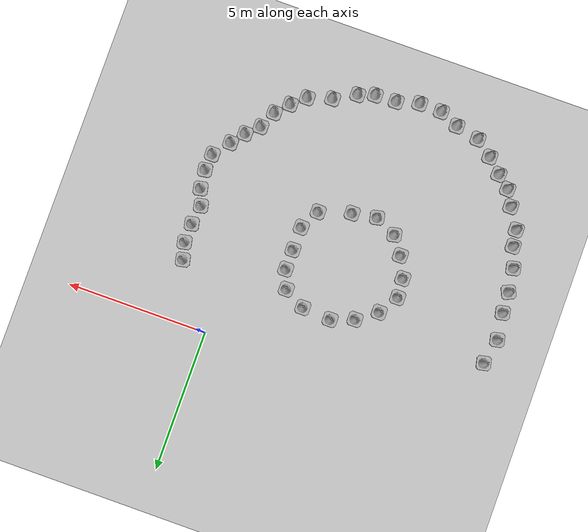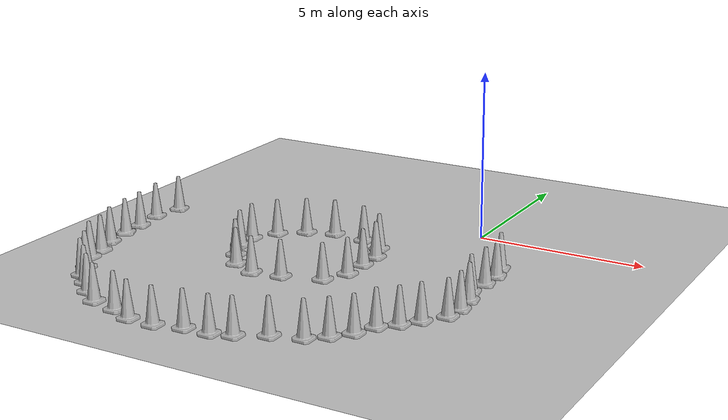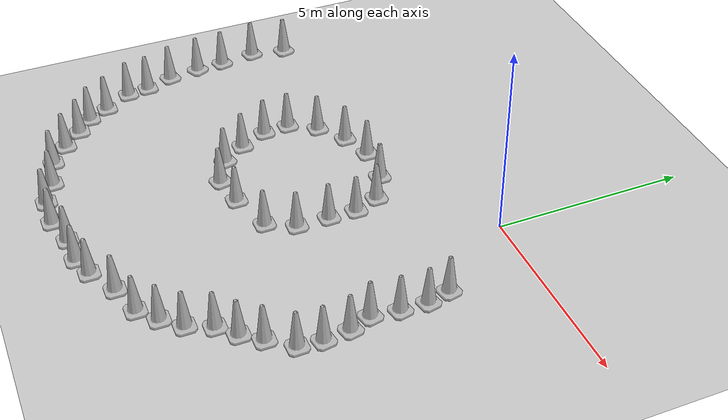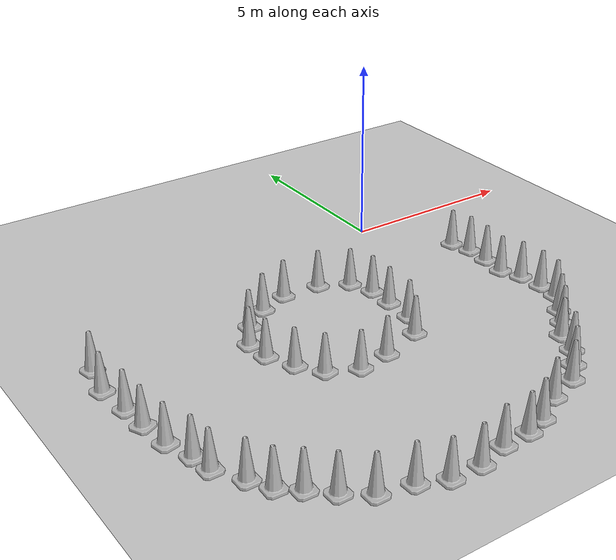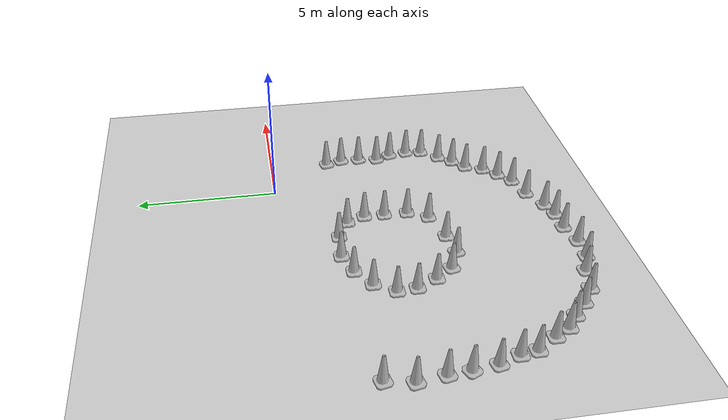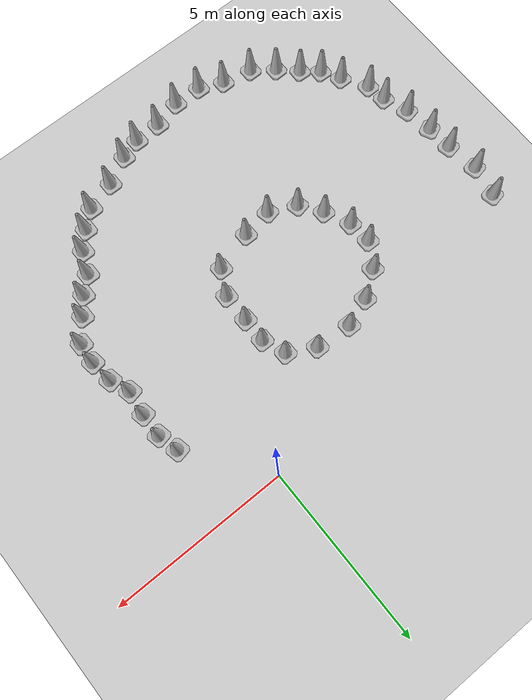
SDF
<sdf version="1.7">
 <world name="empty">
  <model name="ground_plane">
   <static>1</static>
   <link name="link">
    <collision name="collision">
     <geometry><plane><normal>0 0 1</normal><size>100 100</size></plane></geometry>
     <surface>
      <contact><collide_bitmask>65535</collide_bitmask></contact>
      <friction><ode><mu>100</mu><mu2>50</mu2></ode></friction>
     </surface>
    </collision>
    <visual name="visual">
     <cast_shadows>0</cast_shadows>
     <geometry><plane><normal>0 0 1</normal><size>100 100</size></plane></geometry>
     <material>
      <script><uri>file://media/materials/scripts/gazebo.material</uri><name>Gazebo/Grey</name></script>
     </material>
    </visual>
   </link>
  </model>
  <model name="Construction Cone_clone_16">
   <link name="link">
    <collision name="collision">
     <geometry>
      <mesh><scale>10 10 10</scale><uri>model://construction_cone/meshes/construction_cone.dae</uri></mesh>
     </geometry>
    </collision>
    <visual name="visual">
     <geometry>
      <mesh><scale>10 10 10</scale><uri>model://construction_cone/meshes/construction_cone.dae</uri></mesh>
     </geometry>
    </visual>
    <inertial>
     <inertia><ixx>1</ixx><ixy>0</ixy><ixz>0</ixz><iyy>1</iyy><iyz>0</iyz><izz>1</izz></inertia>
     <mass>1</mass>
    </inertial>
   </link>
   <pose>-5.82118 -4.0764 -1e-05 0 -0 0</pose>
  </model>
  <model name="Construction Cone_clone_17">
   <link name="link">
    <collision name="collision">
     <geometry>
      <mesh><scale>10 10 10</scale><uri>model://construction_cone/meshes/construction_cone.dae</uri></mesh>
     </geometry>
    </collision>
    <visual name="visual">
     <geometry>
      <mesh><scale>10 10 10</scale><uri>model://construction_cone/meshes/construction_cone.dae</uri></mesh>
     </geometry>
    </visual>
    <inertial>
     <inertia><ixx>1</ixx><ixy>0</ixy><ixz>0</ixz><iyy>1</iyy><iyz>0</iyz><izz>1</izz></inertia>
     <mass>1</mass>
    </inertial>
   </link>
   <pose>-3.92107 -1.88779 -0 0 -0 0.002196</pose>
  </model>
  <model name="Construction Cone_clone_18">
   <link name="link">
    <collision name="collision">
     <geometry>
      <mesh><scale>10 10 10</scale><uri>model://construction_cone/meshes/construction_cone.dae</uri></mesh>
     </geometry>
    </collision>
    <visual name="visual">
     <geometry>
      <mesh><scale>10 10 10</scale><uri>model://construction_cone/meshes/construction_cone.dae</uri></mesh>
     </geometry>
    </visual>
    <inertial>
     <inertia><ixx>1</ixx><ixy>0</ixy><ixz>0</ixz><iyy>1</iyy><iyz>0</iyz><izz>1</izz></inertia>
     <mass>1</mass>
    </inertial>
   </link>
   <pose>-1.90689 -4.57226 -0 0 -1e-06 -0.032928</pose>
  </model>
  <model name="Construction Cone_clone_19">
   <link name="link">
    <collision name="collision">
     <geometry>
      <mesh><scale>10 10 10</scale><uri>model://construction_cone/meshes/construction_cone.dae</uri></mesh>
     </geometry>
    </collision>
    <visual name="visual">
     <geometry>
      <mesh><scale>10 10 10</scale><uri>model://construction_cone/meshes/construction_cone.dae</uri></mesh>
     </geometry>
    </visual>
    <inertial>
     <inertia><ixx>1</ixx><ixy>0</ixy><ixz>0</ixz><iyy>1</iyy><iyz>0</iyz><izz>1</izz></inertia>
     <mass>1</mass>
    </inertial>
   </link>
   <pose>-3.40789 -5.63019 -1e-05 0 1e-06 0</pose>
  </model>
  <model name="Construction Cone_clone_23">
   <link name="link">
    <collision name="collision">
     <geometry>
      <mesh><scale>10 10 10</scale><uri>model://construction_cone/meshes/construction_cone.dae</uri></mesh>
     </geometry>
    </collision>
    <visual name="visual">
     <geometry>
      <mesh><scale>10 10 10</scale><uri>model://construction_cone/meshes/construction_cone.dae</uri></mesh>
     </geometry>
    </visual>
    <inertial>
     <inertia><ixx>1</ixx><ixy>0</ixy><ixz>0</ixz><iyy>1</iyy><iyz>0</iyz><izz>1</izz></inertia>
     <mass>1</mass>
    </inertial>
   </link>
   <pose>1.40756 -6.53485 -0 0 -1e-06 -0.003485</pose>
  </model>
  <model name="Construction Cone_clone_24">
   <link name="link">
    <collision name="collision">
     <geometry>
      <mesh><scale>10 10 10</scale><uri>model://construction_cone/meshes/construction_cone.dae</uri></mesh>
     </geometry>
    </collision>
    <visual name="visual">
     <geometry>
      <mesh><scale>10 10 10</scale><uri>model://construction_cone/meshes/construction_cone.dae</uri></mesh>
     </geometry>
    </visual>
    <inertial>
     <inertia><ixx>1</ixx><ixy>0</ixy><ixz>0</ixz><iyy>1</iyy><iyz>0</iyz><izz>1</izz></inertia>
     <mass>1</mass>
    </inertial>
   </link>
   <pose>-0.102272 -8.50886 0 -0 -0 -0</pose>
  </model>
  <model name="Construction Cone_clone_25">
   <link name="link">
    <collision name="collision">
     <geometry>
      <mesh><scale>10 10 10</scale><uri>model://construction_cone/meshes/construction_cone.dae</uri></mesh>
     </geometry>
    </collision>
    <visual name="visual">
     <geometry>
      <mesh><scale>10 10 10</scale><uri>model://construction_cone/meshes/construction_cone.dae</uri></mesh>
     </geometry>
    </visual>
    <inertial>
     <inertia><ixx>1</ixx><ixy>0</ixy><ixz>0</ixz><iyy>1</iyy><iyz>0</iyz><izz>1</izz></inertia>
     <mass>1</mass>
    </inertial>
   </link>
   <pose>-2.20468 -9.6187 -0 0 -1e-06 0</pose>
  </model>
  <model name="Construction Cone_clone_26">
   <link name="link">
    <collision name="collision">
     <geometry>
      <mesh><scale>10 10 10</scale><uri>model://construction_cone/meshes/construction_cone.dae</uri></mesh>
     </geometry>
    </collision>
    <visual name="visual">
     <geometry>
      <mesh><scale>10 10 10</scale><uri>model://construction_cone/meshes/construction_cone.dae</uri></mesh>
     </geometry>
    </visual>
    <inertial>
     <inertia><ixx>1</ixx><ixy>0</ixy><ixz>0</ixz><iyy>1</iyy><iyz>0</iyz><izz>1</izz></inertia>
     <mass>1</mass>
    </inertial>
   </link>
   <pose>-4.34987 -10.0524 1e-06 -3e-06 -0 0.00204</pose>
  </model>
  <model name="Construction Cone_clone_27">
   <link name="link">
    <collision name="collision">
     <geometry>
      <mesh><scale>10 10 10</scale><uri>model://construction_cone/meshes/construction_cone.dae</uri></mesh>
     </geometry>
    </collision>
    <visual name="visual">
     <geometry>
      <mesh><scale>10 10 10</scale><uri>model://construction_cone/meshes/construction_cone.dae</uri></mesh>
     </geometry>
    </visual>
    <inertial>
     <inertia><ixx>1</ixx><ixy>0</ixy><ixz>0</ixz><iyy>1</iyy><iyz>0</iyz><izz>1</izz></inertia>
     <mass>1</mass>
    </inertial>
   </link>
   <pose>-7.7672 -8.62882 0 -0 -0 -0.041541</pose>
  </model>
  <model name="Construction Cone_clone_28">
   <link name="link">
    <collision name="collision">
     <geometry>
      <mesh><scale>10 10 10</scale><uri>model://construction_cone/meshes/construction_cone.dae</uri></mesh>
     </geometry>
    </collision>
    <visual name="visual">
     <geometry>
      <mesh><scale>10 10 10</scale><uri>model://construction_cone/meshes/construction_cone.dae</uri></mesh>
     </geometry>
    </visual>
    <inertial>
     <inertia><ixx>1</ixx><ixy>0</ixy><ixz>0</ixz><iyy>1</iyy><iyz>0</iyz><izz>1</izz></inertia>
     <mass>1</mass>
    </inertial>
   </link>
   <pose>-8.97175 -6.99737 -0 0 -1e-06 0</pose>
  </model>
  <model name="Construction Cone_clone_38">
   <link name="link">
    <collision name="collision">
     <geometry>
      <mesh><scale>10 10 10</scale><uri>model://construction_cone/meshes/construction_cone.dae</uri></mesh>
     </geometry>
    </collision>
    <visual name="visual">
     <geometry>
      <mesh><scale>10 10 10</scale><uri>model://construction_cone/meshes/construction_cone.dae</uri></mesh>
     </geometry>
    </visual>
    <inertial>
     <inertia><ixx>1</ixx><ixy>0</ixy><ixz>0</ixz><iyy>1</iyy><iyz>0</iyz><izz>1</izz></inertia>
     <mass>1</mass>
    </inertial>
   </link>
   <pose>1.86776 -5.93993 -0 0 -1e-06 0.015881</pose>
  </model>
  <model name="Construction Cone_clone_39">
   <link name="link">
    <collision name="collision">
     <geometry>
      <mesh><scale>10 10 10</scale><uri>model://construction_cone/meshes/construction_cone.dae</uri></mesh>
     </geometry>
    </collision>
    <visual name="visual">
     <geometry>
      <mesh><scale>10 10 10</scale><uri>model://construction_cone/meshes/construction_cone.dae</uri></mesh>
     </geometry>
    </visual>
    <inertial>
     <inertia><ixx>1</ixx><ixy>0</ixy><ixz>0</ixz><iyy>1</iyy><iyz>0</iyz><izz>1</izz></inertia>
     <mass>1</mass>
    </inertial>
   </link>
   <pose>1.0372 -7.00842 -1e-05 0 0 -0.003569</pose>
  </model>
  <model name="Construction Cone_clone_40">
   <link name="link">
    <collision name="collision">
     <geometry>
      <mesh><scale>10 10 10</scale><uri>model://construction_cone/meshes/construction_cone.dae</uri></mesh>
     </geometry>
    </collision>
    <visual name="visual">
     <geometry>
      <mesh><scale>10 10 10</scale><uri>model://construction_cone/meshes/construction_cone.dae</uri></mesh>
     </geometry>
    </visual>
    <inertial>
     <inertia><ixx>1</ixx><ixy>0</ixy><ixz>0</ixz><iyy>1</iyy><iyz>0</iyz><izz>1</izz></inertia>
     <mass>1</mass>
    </inertial>
   </link>
   <pose>0.324262 -8.03906 -0 0 -0 0</pose>
  </model>
  <model name="Construction Cone_clone_41">
   <link name="link">
    <collision name="collision">
     <geometry>
      <mesh><scale>10 10 10</scale><uri>model://construction_cone/meshes/construction_cone.dae</uri></mesh>
     </geometry>
    </collision>
    <visual name="visual">
     <geometry>
      <mesh><scale>10 10 10</scale><uri>model://construction_cone/meshes/construction_cone.dae</uri></mesh>
     </geometry>
    </visual>
    <inertial>
     <inertia><ixx>1</ixx><ixy>0</ixy><ixz>0</ixz><iyy>1</iyy><iyz>0</iyz><izz>1</izz></inertia>
     <mass>1</mass>
    </inertial>
   </link>
   <pose>0.601841 -7.41938 -9e-06 -1e-06 -0 0.001041</pose>
  </model>
  <model name="Construction Cone_clone_42">
   <link name="link">
    <collision name="collision">
     <geometry>
      <mesh><scale>10 10 10</scale><uri>model://construction_cone/meshes/construction_cone.dae</uri></mesh>
     </geometry>
    </collision>
    <visual name="visual">
     <geometry>
      <mesh><scale>10 10 10</scale><uri>model://construction_cone/meshes/construction_cone.dae</uri></mesh>
     </geometry>
    </visual>
    <inertial>
     <inertia><ixx>1</ixx><ixy>0</ixy><ixz>0</ixz><iyy>1</iyy><iyz>0</iyz><izz>1</izz></inertia>
     <mass>1</mass>
    </inertial>
   </link>
   <pose>-0.581843 -8.92444 -0 -0 -0 -0</pose>
  </model>
  <model name="Construction Cone_clone_43">
   <link name="link">
    <collision name="collision">
     <geometry>
      <mesh><scale>10 10 10</scale><uri>model://construction_cone/meshes/construction_cone.dae</uri></mesh>
     </geometry>
    </collision>
    <visual name="visual">
     <geometry>
      <mesh><scale>10 10 10</scale><uri>model://construction_cone/meshes/construction_cone.dae</uri></mesh>
     </geometry>
    </visual>
    <inertial>
     <inertia><ixx>1</ixx><ixy>0</ixy><ixz>0</ixz><iyy>1</iyy><iyz>0</iyz><izz>1</izz></inertia>
     <mass>1</mass>
    </inertial>
   </link>
   <pose>-1.42708 -9.18922 -9e-06 -4e-06 -0 -0</pose>
  </model>
  <model name="Construction Cone_clone_44">
   <link name="link">
    <collision name="collision">
     <geometry>
      <mesh><scale>10 10 10</scale><uri>model://construction_cone/meshes/construction_cone.dae</uri></mesh>
     </geometry>
    </collision>
    <visual name="visual">
     <geometry>
      <mesh><scale>10 10 10</scale><uri>model://construction_cone/meshes/construction_cone.dae</uri></mesh>
     </geometry>
    </visual>
    <inertial>
     <inertia><ixx>1</ixx><ixy>0</ixy><ixz>0</ixz><iyy>1</iyy><iyz>0</iyz><izz>1</izz></inertia>
     <mass>1</mass>
    </inertial>
   </link>
   <pose>-2.78952 -9.80882 -0 0 -0 0</pose>
  </model>
  <model name="Construction Cone_clone_45">
   <link name="link">
    <collision name="collision">
     <geometry>
      <mesh><scale>10 10 10</scale><uri>model://construction_cone/meshes/construction_cone.dae</uri></mesh>
     </geometry>
    </collision>
    <visual name="visual">
     <geometry>
      <mesh><scale>10 10 10</scale><uri>model://construction_cone/meshes/construction_cone.dae</uri></mesh>
     </geometry>
    </visual>
    <inertial>
     <inertia><ixx>1</ixx><ixy>0</ixy><ixz>0</ixz><iyy>1</iyy><iyz>0</iyz><izz>1</izz></inertia>
     <mass>1</mass>
    </inertial>
   </link>
   <pose>-3.54768 -9.84087 -0 0 -0 0.006209</pose>
  </model>
  <model name="Construction Cone_clone_46">
   <link name="link">
    <collision name="collision">
     <geometry>
      <mesh><scale>10 10 10</scale><uri>model://construction_cone/meshes/construction_cone.dae</uri></mesh>
     </geometry>
    </collision>
    <visual name="visual">
     <geometry>
      <mesh><scale>10 10 10</scale><uri>model://construction_cone/meshes/construction_cone.dae</uri></mesh>
     </geometry>
    </visual>
    <inertial>
     <inertia><ixx>1</ixx><ixy>0</ixy><ixz>0</ixz><iyy>1</iyy><iyz>0</iyz><izz>1</izz></inertia>
     <mass>1</mass>
    </inertial>
   </link>
   <pose>-5.15516 -10.0346 -9e-06 0 1e-06 -0.00461</pose>
  </model>
  <model name="Construction Cone_clone_47">
   <link name="link">
    <collision name="collision">
     <geometry>
      <mesh><scale>10 10 10</scale><uri>model://construction_cone/meshes/construction_cone.dae</uri></mesh>
     </geometry>
    </collision>
    <visual name="visual">
     <geometry>
      <mesh><scale>10 10 10</scale><uri>model://construction_cone/meshes/construction_cone.dae</uri></mesh>
     </geometry>
    </visual>
    <inertial>
     <inertia><ixx>1</ixx><ixy>0</ixy><ixz>0</ixz><iyy>1</iyy><iyz>0</iyz><izz>1</izz></inertia>
     <mass>1</mass>
    </inertial>
   </link>
   <pose>-5.83149 -9.7383 -0 0 -1e-06 0.031603</pose>
  </model>
  <model name="Construction Cone_clone_48">
   <link name="link">
    <collision name="collision">
     <geometry>
      <mesh><scale>10 10 10</scale><uri>model://construction_cone/meshes/construction_cone.dae</uri></mesh>
     </geometry>
    </collision>
    <visual name="visual">
     <geometry>
      <mesh><scale>10 10 10</scale><uri>model://construction_cone/meshes/construction_cone.dae</uri></mesh>
     </geometry>
    </visual>
    <inertial>
     <inertia><ixx>1</ixx><ixy>0</ixy><ixz>0</ixz><iyy>1</iyy><iyz>0</iyz><izz>1</izz></inertia>
     <mass>1</mass>
    </inertial>
   </link>
   <pose>-6.67363 -9.54981 -0 0 -1e-06 0</pose>
  </model>
  <model name="Construction Cone_clone_49">
   <link name="link">
    <collision name="collision">
     <geometry>
      <mesh><scale>10 10 10</scale><uri>model://construction_cone/meshes/construction_cone.dae</uri></mesh>
     </geometry>
    </collision>
    <visual name="visual">
     <geometry>
      <mesh><scale>10 10 10</scale><uri>model://construction_cone/meshes/construction_cone.dae</uri></mesh>
     </geometry>
    </visual>
    <inertial>
     <inertia><ixx>1</ixx><ixy>0</ixy><ixz>0</ixz><iyy>1</iyy><iyz>0</iyz><izz>1</izz></inertia>
     <mass>1</mass>
    </inertial>
   </link>
   <pose>-7.26776 -9.10055 -0 -0 -1e-06 0.013194</pose>
  </model>
  <model name="Construction Cone_clone_50">
   <link name="link">
    <collision name="collision">
     <geometry>
      <mesh><scale>10 10 10</scale><uri>model://construction_cone/meshes/construction_cone.dae</uri></mesh>
     </geometry>
    </collision>
    <visual name="visual">
     <geometry>
      <mesh><scale>10 10 10</scale><uri>model://construction_cone/meshes/construction_cone.dae</uri></mesh>
     </geometry>
    </visual>
    <inertial>
     <inertia><ixx>1</ixx><ixy>0</ixy><ixz>0</ixz><iyy>1</iyy><iyz>0</iyz><izz>1</izz></inertia>
     <mass>1</mass>
    </inertial>
   </link>
   <pose>-8.22553 -8.23739 -1e-06 2e-06 -1e-06 -0.049203</pose>
  </model>
  <model name="Construction Cone_clone_51">
   <link name="link">
    <collision name="collision">
     <geometry>
      <mesh><scale>10 10 10</scale><uri>model://construction_cone/meshes/construction_cone.dae</uri></mesh>
     </geometry>
    </collision>
    <visual name="visual">
     <geometry>
      <mesh><scale>10 10 10</scale><uri>model://construction_cone/meshes/construction_cone.dae</uri></mesh>
     </geometry>
    </visual>
    <inertial>
     <inertia><ixx>1</ixx><ixy>0</ixy><ixz>0</ixz><iyy>1</iyy><iyz>0</iyz><izz>1</izz></inertia>
     <mass>1</mass>
    </inertial>
   </link>
   <pose>-8.53027 -7.70099 -1e-05 0 1e-06 0</pose>
  </model>
  <model name="Construction Cone_clone_53">
   <link name="link">
    <collision name="collision">
     <geometry>
      <mesh><scale>10 10 10</scale><uri>model://construction_cone/meshes/construction_cone.dae</uri></mesh>
     </geometry>
    </collision>
    <visual name="visual">
     <geometry>
      <mesh><scale>10 10 10</scale><uri>model://construction_cone/meshes/construction_cone.dae</uri></mesh>
     </geometry>
    </visual>
    <inertial>
     <inertia><ixx>1</ixx><ixy>0</ixy><ixz>0</ixz><iyy>1</iyy><iyz>0</iyz><izz>1</izz></inertia>
     <mass>1</mass>
    </inertial>
   </link>
   <pose>-9.43042 -4.85938 -0 0 -1e-06 0.43583</pose>
  </model>
  <model name="Construction Cone_clone_60">
   <link name="link">
    <collision name="collision">
     <geometry>
      <mesh><scale>10 10 10</scale><uri>model://construction_cone/meshes/construction_cone.dae</uri></mesh>
     </geometry>
    </collision>
    <visual name="visual">
     <geometry>
      <mesh><scale>10 10 10</scale><uri>model://construction_cone/meshes/construction_cone.dae</uri></mesh>
     </geometry>
    </visual>
    <inertial>
     <inertia><ixx>1</ixx><ixy>0</ixy><ixz>0</ixz><iyy>1</iyy><iyz>0</iyz><izz>1</izz></inertia>
     <mass>1</mass>
    </inertial>
   </link>
   <pose>-2.14069 -2.36859 -1e-05 -1e-06 -0 -0</pose>
  </model>
  <model name="Construction Cone_clone_61">
   <link name="link">
    <collision name="collision">
     <geometry>
      <mesh><scale>10 10 10</scale><uri>model://construction_cone/meshes/construction_cone.dae</uri></mesh>
     </geometry>
    </collision>
    <visual name="visual">
     <geometry>
      <mesh><scale>10 10 10</scale><uri>model://construction_cone/meshes/construction_cone.dae</uri></mesh>
     </geometry>
    </visual>
    <inertial>
     <inertia><ixx>1</ixx><ixy>0</ixy><ixz>0</ixz><iyy>1</iyy><iyz>0</iyz><izz>1</izz></inertia>
     <mass>1</mass>
    </inertial>
   </link>
   <pose>-2.89241 -1.9618 -0 0 -1e-06 0</pose>
  </model>
  <model name="Construction Cone_clone_62">
   <link name="link">
    <collision name="collision">
     <geometry>
      <mesh><scale>10 10 10</scale><uri>model://construction_cone/meshes/construction_cone.dae</uri></mesh>
     </geometry>
    </collision>
    <visual name="visual">
     <geometry>
      <mesh><scale>10 10 10</scale><uri>model://construction_cone/meshes/construction_cone.dae</uri></mesh>
     </geometry>
    </visual>
    <inertial>
     <inertia><ixx>1</ixx><ixy>0</ixy><ixz>0</ixz><iyy>1</iyy><iyz>0</iyz><izz>1</izz></inertia>
     <mass>1</mass>
    </inertial>
   </link>
   <pose>-5.4392 -2.69441 -0 0 -1e-06 0</pose>
  </model>
  <model name="Construction Cone_clone_63">
   <link name="link">
    <collision name="collision">
     <geometry>
      <mesh><scale>10 10 10</scale><uri>model://construction_cone/meshes/construction_cone.dae</uri></mesh>
     </geometry>
    </collision>
    <visual name="visual">
     <geometry>
      <mesh><scale>10 10 10</scale><uri>model://construction_cone/meshes/construction_cone.dae</uri></mesh>
     </geometry>
    </visual>
    <inertial>
     <inertia><ixx>1</ixx><ixy>0</ixy><ixz>0</ixz><iyy>1</iyy><iyz>0</iyz><izz>1</izz></inertia>
     <mass>1</mass>
    </inertial>
   </link>
   <pose>-4.73181 -2.1814 -0 0 -1e-06 0.002576</pose>
  </model>
  <model name="Construction Cone_clone_64">
   <link name="link">
    <collision name="collision">
     <geometry>
      <mesh><scale>10 10 10</scale><uri>model://construction_cone/meshes/construction_cone.dae</uri></mesh>
     </geometry>
    </collision>
    <visual name="visual">
     <geometry>
      <mesh><scale>10 10 10</scale><uri>model://construction_cone/meshes/construction_cone.dae</uri></mesh>
     </geometry>
    </visual>
    <inertial>
     <inertia><ixx>1</ixx><ixy>0</ixy><ixz>0</ixz><iyy>1</iyy><iyz>0</iyz><izz>1</izz></inertia>
     <mass>1</mass>
    </inertial>
   </link>
   <pose>-5.87241 -3.39453 -0 0 -1e-06 0</pose>
  </model>
  <model name="Construction Cone_clone_65">
   <link name="link">
    <collision name="collision">
     <geometry>
      <mesh><scale>10 10 10</scale><uri>model://construction_cone/meshes/construction_cone.dae</uri></mesh>
     </geometry>
    </collision>
    <visual name="visual">
     <geometry>
      <mesh><scale>10 10 10</scale><uri>model://construction_cone/meshes/construction_cone.dae</uri></mesh>
     </geometry>
    </visual>
    <inertial>
     <inertia><ixx>1</ixx><ixy>0</ixy><ixz>0</ixz><iyy>1</iyy><iyz>0</iyz><izz>1</izz></inertia>
     <mass>1</mass>
    </inertial>
   </link>
   <pose>-5.47731 -4.79963 -0 0 -0 0</pose>
  </model>
  <model name="Construction Cone_clone_66">
   <link name="link">
    <collision name="collision">
     <geometry>
      <mesh><scale>10 10 10</scale><uri>model://construction_cone/meshes/construction_cone.dae</uri></mesh>
     </geometry>
    </collision>
    <visual name="visual">
     <geometry>
      <mesh><scale>10 10 10</scale><uri>model://construction_cone/meshes/construction_cone.dae</uri></mesh>
     </geometry>
    </visual>
    <inertial>
     <inertia><ixx>1</ixx><ixy>0</ixy><ixz>0</ixz><iyy>1</iyy><iyz>0</iyz><izz>1</izz></inertia>
     <mass>1</mass>
    </inertial>
   </link>
   <pose>-2.27655 -5.27853 -0 0 0 -0.000653</pose>
  </model>
  <model name="Construction Cone_clone_67">
   <link name="link">
    <collision name="collision">
     <geometry>
      <mesh><scale>10 10 10</scale><uri>model://construction_cone/meshes/construction_cone.dae</uri></mesh>
     </geometry>
    </collision>
    <visual name="visual">
     <geometry>
      <mesh><scale>10 10 10</scale><uri>model://construction_cone/meshes/construction_cone.dae</uri></mesh>
     </geometry>
    </visual>
    <inertial>
     <inertia><ixx>1</ixx><ixy>0</ixy><ixz>0</ixz><iyy>1</iyy><iyz>0</iyz><izz>1</izz></inertia>
     <mass>1</mass>
    </inertial>
   </link>
   <pose>-1.8942 -3.74047 -1e-06 2e-06 1e-06 0.02674</pose>
  </model>
  <model name="Construction Cone_clone_59_clone_2">
   <link name="link">
    <collision name="collision">
     <geometry>
      <mesh><scale>10 10 10</scale><uri>model://construction_cone/meshes/construction_cone.dae</uri></mesh>
     </geometry>
    </collision>
    <visual name="visual">
     <geometry>
      <mesh><scale>10 10 10</scale><uri>model://construction_cone/meshes/construction_cone.dae</uri></mesh>
     </geometry>
    </visual>
    <inertial>
     <inertia><ixx>1</ixx><ixy>0</ixy><ixz>0</ixz><iyy>1</iyy><iyz>0</iyz><izz>1</izz></inertia>
     <mass>1</mass>
    </inertial>
   </link>
   <pose>1.63228 -4.1098 -0 0 -0 0.206225</pose>
  </model>
  <model name="Construction Cone_clone_59_clone_3">
   <link name="link">
    <collision name="collision">
     <geometry>
      <mesh><scale>10 10 10</scale><uri>model://construction_cone/meshes/construction_cone.dae</uri></mesh>
     </geometry>
    </collision>
    <visual name="visual">
     <geometry>
      <mesh><scale>10 10 10</scale><uri>model://construction_cone/meshes/construction_cone.dae</uri></mesh>
     </geometry>
    </visual>
    <inertial>
     <inertia><ixx>1</ixx><ixy>0</ixy><ixz>0</ixz><iyy>1</iyy><iyz>0</iyz><izz>1</izz></inertia>
     <mass>1</mass>
    </inertial>
   </link>
   <pose>1.85149 -4.67214 -0 -0 -1e-06 0.206225</pose>
  </model>
  <model name="Construction Cone_clone_59_clone_4">
   <link name="link">
    <collision name="collision">
     <geometry>
      <mesh><scale>10 10 10</scale><uri>model://construction_cone/meshes/construction_cone.dae</uri></mesh>
     </geometry>
    </collision>
    <visual name="visual">
     <geometry>
      <mesh><scale>10 10 10</scale><uri>model://construction_cone/meshes/construction_cone.dae</uri></mesh>
     </geometry>
    </visual>
    <inertial>
     <inertia><ixx>1</ixx><ixy>0</ixy><ixz>0</ixz><iyy>1</iyy><iyz>0</iyz><izz>1</izz></inertia>
     <mass>1</mass>
    </inertial>
   </link>
   <pose>1.92473 -5.33913 -0 0 -0 0.153025</pose>
  </model>
  <model name="Construction Cone_clone_60_clone">
   <link name="link">
    <collision name="collision">
     <geometry>
      <mesh><scale>10 10 10</scale><uri>model://construction_cone/meshes/construction_cone.dae</uri></mesh>
     </geometry>
    </collision>
    <visual name="visual">
     <geometry>
      <mesh><scale>10 10 10</scale><uri>model://construction_cone/meshes/construction_cone.dae</uri></mesh>
     </geometry>
    </visual>
    <inertial>
     <inertia><ixx>1</ixx><ixy>0</ixy><ixz>0</ixz><iyy>1</iyy><iyz>0</iyz><izz>1</izz></inertia>
     <mass>1</mass>
    </inertial>
   </link>
   <pose>-1.88724 -3.01874 -9e-06 -2e-06 -0 -0</pose>
  </model>
  <model name="Construction Cone_clone_59_clone_clone_5">
   <link name="link">
    <collision name="collision">
     <geometry>
      <mesh><scale>10 10 10</scale><uri>model://construction_cone/meshes/construction_cone.dae</uri></mesh>
     </geometry>
    </collision>
    <visual name="visual">
     <geometry>
      <mesh><scale>10 10 10</scale><uri>model://construction_cone/meshes/construction_cone.dae</uri></mesh>
     </geometry>
    </visual>
    <inertial>
     <inertia><ixx>1</ixx><ixy>0</ixy><ixz>0</ixz><iyy>1</iyy><iyz>0</iyz><izz>1</izz></inertia>
     <mass>1</mass>
    </inertial>
   </link>
   <pose>-9.4271 -2.24779 -1e-05 -1e-06 0 0.206225</pose>
  </model>
  <model name="Construction Cone_clone_59_clone_clone_6">
   <link name="link">
    <collision name="collision">
     <geometry>
      <mesh><scale>10 10 10</scale><uri>model://construction_cone/meshes/construction_cone.dae</uri></mesh>
     </geometry>
    </collision>
    <visual name="visual">
     <geometry>
      <mesh><scale>10 10 10</scale><uri>model://construction_cone/meshes/construction_cone.dae</uri></mesh>
     </geometry>
    </visual>
    <inertial>
     <inertia><ixx>1</ixx><ixy>0</ixy><ixz>0</ixz><iyy>1</iyy><iyz>0</iyz><izz>1</izz></inertia>
     <mass>1</mass>
    </inertial>
   </link>
   <pose>-9.60566 -3.16739 -0 0 -0 0.206225</pose>
  </model>
  <model name="Construction Cone_clone_59_clone_clone_7">
   <link name="link">
    <collision name="collision">
     <geometry>
      <mesh><scale>10 10 10</scale><uri>model://construction_cone/meshes/construction_cone.dae</uri></mesh>
     </geometry>
    </collision>
    <visual name="visual">
     <geometry>
      <mesh><scale>10 10 10</scale><uri>model://construction_cone/meshes/construction_cone.dae</uri></mesh>
     </geometry>
    </visual>
    <inertial>
     <inertia><ixx>1</ixx><ixy>0</ixy><ixz>0</ixz><iyy>1</iyy><iyz>0</iyz><izz>1</izz></inertia>
     <mass>1</mass>
    </inertial>
   </link>
   <pose>-9.31594 -5.69862 0 0 -0 0.206225</pose>
  </model>
  <model name="Construction Cone_clone_59_clone_clone_8">
   <link name="link">
    <collision name="collision">
     <geometry>
      <mesh><scale>10 10 10</scale><uri>model://construction_cone/meshes/construction_cone.dae</uri></mesh>
     </geometry>
    </collision>
    <visual name="visual">
     <geometry>
      <mesh><scale>10 10 10</scale><uri>model://construction_cone/meshes/construction_cone.dae</uri></mesh>
     </geometry>
    </visual>
    <inertial>
     <inertia><ixx>1</ixx><ixy>0</ixy><ixz>0</ixz><iyy>1</iyy><iyz>0</iyz><izz>1</izz></inertia>
     <mass>1</mass>
    </inertial>
   </link>
   <pose>-9.47687 -4.11261 -1e-06 1e-06 -2e-06 0.206225</pose>
  </model>
  <model name="Construction Cone_clone_59_clone_clone_9">
   <link name="link">
    <collision name="collision">
     <geometry>
      <mesh><scale>10 10 10</scale><uri>model://construction_cone/meshes/construction_cone.dae</uri></mesh>
     </geometry>
    </collision>
    <visual name="visual">
     <geometry>
      <mesh><scale>10 10 10</scale><uri>model://construction_cone/meshes/construction_cone.dae</uri></mesh>
     </geometry>
    </visual>
    <inertial>
     <inertia><ixx>1</ixx><ixy>0</ixy><ixz>0</ixz><iyy>1</iyy><iyz>0</iyz><izz>1</izz></inertia>
     <mass>1</mass>
    </inertial>
   </link>
   <pose>1.71991 -3.40946 -0 -0 -1e-06 0.206225</pose>
  </model>
  <model name="Construction Cone_clone_59_clone_clone_10">
   <link name="link">
    <collision name="collision">
     <geometry>
      <mesh><scale>10 10 10</scale><uri>model://construction_cone/meshes/construction_cone.dae</uri></mesh>
     </geometry>
    </collision>
    <visual name="visual">
     <geometry>
      <mesh><scale>10 10 10</scale><uri>model://construction_cone/meshes/construction_cone.dae</uri></mesh>
     </geometry>
    </visual>
    <inertial>
     <inertia><ixx>1</ixx><ixy>0</ixy><ixz>0</ixz><iyy>1</iyy><iyz>0</iyz><izz>1</izz></inertia>
     <mass>1</mass>
    </inertial>
   </link>
   <pose>1.73897 -2.72194 0 0 -0 0.206225</pose>
  </model>
  <model name="Construction Cone_clone_59_clone_clone_11">
   <link name="link">
    <collision name="collision">
     <geometry>
      <mesh><scale>10 10 10</scale><uri>model://construction_cone/meshes/construction_cone.dae</uri></mesh>
     </geometry>
    </collision>
    <visual name="visual">
     <geometry>
      <mesh><scale>10 10 10</scale><uri>model://construction_cone/meshes/construction_cone.dae</uri></mesh>
     </geometry>
    </visual>
    <inertial>
     <inertia><ixx>1</ixx><ixy>0</ixy><ixz>0</ixz><iyy>1</iyy><iyz>0</iyz><izz>1</izz></inertia>
     <mass>1</mass>
    </inertial>
   </link>
   <pose>1.58624 -2.13001 -0 0 -0 0.206225</pose>
  </model>
  <model name="Construction Cone_clone_59_clone_clone_18">
   <link name="link">
    <collision name="collision">
     <geometry>
      <mesh><scale>10 10 10</scale><uri>model://construction_cone/meshes/construction_cone.dae</uri></mesh>
     </geometry>
    </collision>
    <visual name="visual">
     <geometry>
      <mesh><scale>10 10 10</scale><uri>model://construction_cone/meshes/construction_cone.dae</uri></mesh>
     </geometry>
    </visual>
    <inertial>
     <inertia><ixx>1</ixx><ixy>0</ixy><ixz>0</ixz><iyy>1</iyy><iyz>0</iyz><izz>1</izz></inertia>
     <mass>1</mass>
    </inertial>
   </link>
   <pose>-5.0415 -5.41153 0 0 -0 0.206225</pose>
  </model>
  <model name="Construction Cone_clone_59_clone_clone_19">
   <link name="link">
    <collision name="collision">
     <geometry>
      <mesh><scale>10 10 10</scale><uri>model://construction_cone/meshes/construction_cone.dae</uri></mesh>
     </geometry>
    </collision>
    <visual name="visual">
     <geometry>
      <mesh><scale>10 10 10</scale><uri>model://construction_cone/meshes/construction_cone.dae</uri></mesh>
     </geometry>
    </visual>
    <inertial>
     <inertia><ixx>1</ixx><ixy>0</ixy><ixz>0</ixz><iyy>1</iyy><iyz>0</iyz><izz>1</izz></inertia>
     <mass>1</mass>
    </inertial>
   </link>
   <pose>-4.27777 -5.77433 -0 -0 -1e-06 0.206225</pose>
  </model>
  <model name="Construction Cone_clone_28_clone">
   <link name="link">
    <collision name="collision">
     <geometry>
      <mesh><scale>10 10 10</scale><uri>model://construction_cone/meshes/construction_cone.dae</uri></mesh>
     </geometry>
    </collision>
    <visual name="visual">
     <geometry>
      <mesh><scale>10 10 10</scale><uri>model://construction_cone/meshes/construction_cone.dae</uri></mesh>
     </geometry>
    </visual>
    <inertial>
     <inertia><ixx>1</ixx><ixy>0</ixy><ixz>0</ixz><iyy>1</iyy><iyz>0</iyz><izz>1</izz></inertia>
     <mass>1</mass>
    </inertial>
   </link>
   <pose>-9.05828 -6.41765 -0 0 -1e-06 0</pose>
  </model>
 </world>
</sdf>
